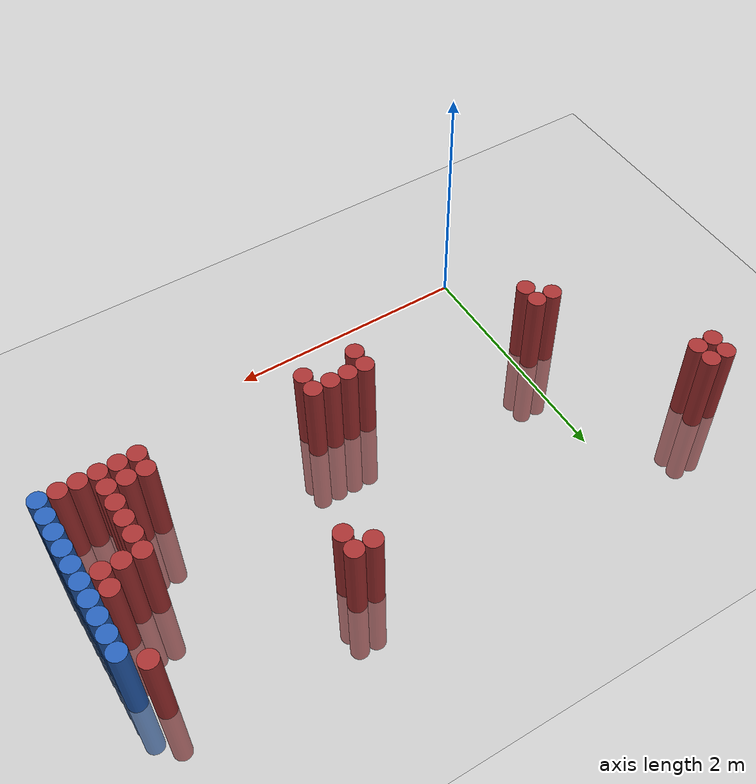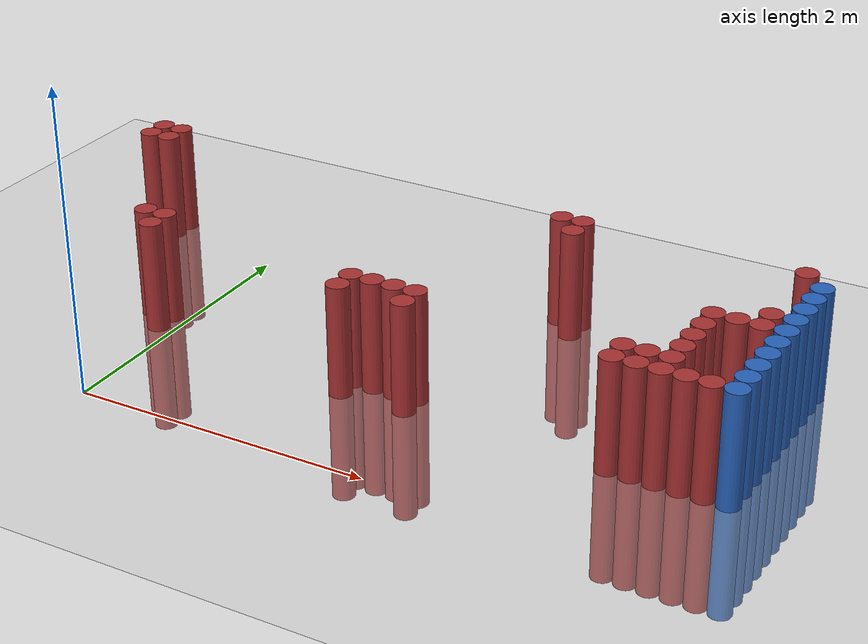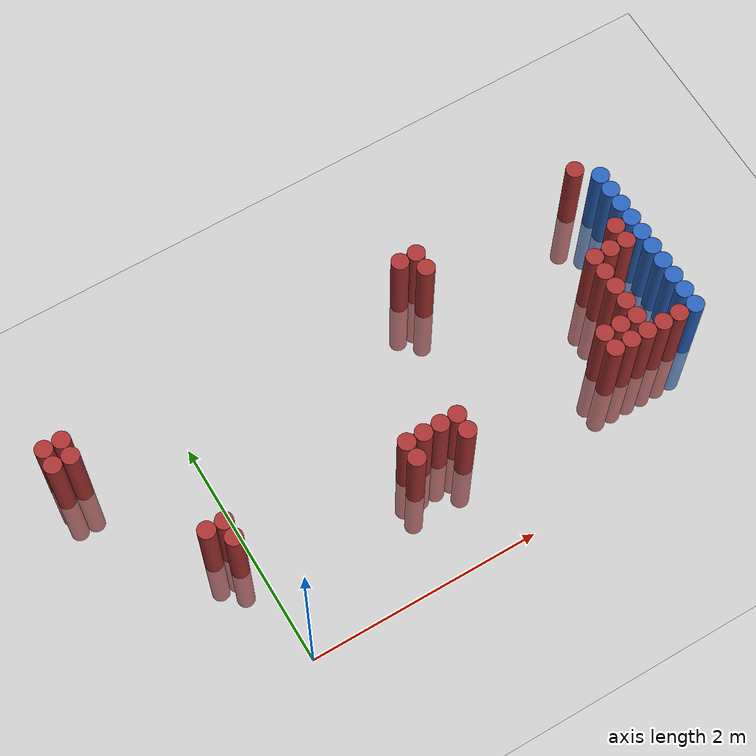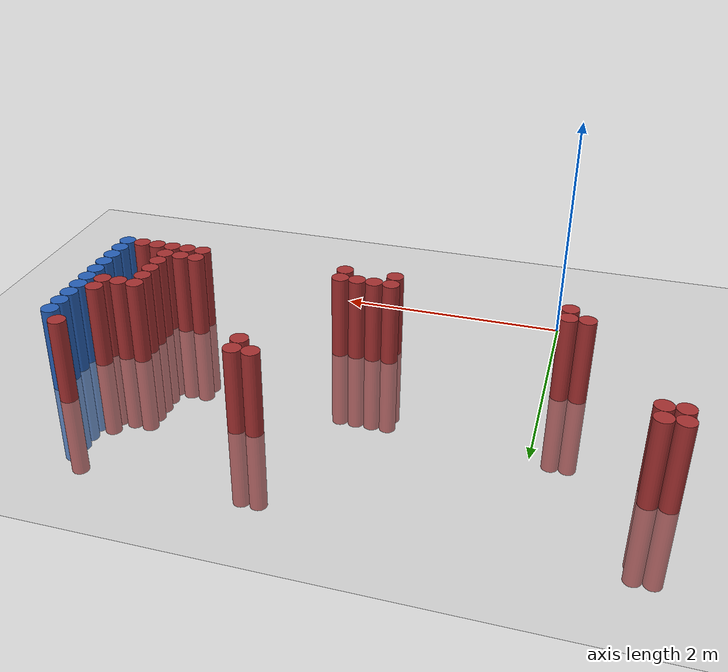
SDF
<sdf version="1.6">
 <world name="default">
  <model name="ground_plane">
   <static>1</static>
   <link name="link">
    <collision name="collision">
     <geometry><plane><normal>0 0 1</normal><size>100 100</size></plane></geometry>
     <surface><friction><ode><mu>100</mu><mu2>50</mu2></ode></friction></surface>
    </collision>
    <visual name="visual">
     <cast_shadows>0</cast_shadows>
     <geometry><plane><normal>0 0 1</normal><size>100 100</size></plane></geometry>
     <material>
      <script><uri>file://media/materials/scripts/gazebo.material</uri><name>Gazebo/Grey</name></script>
     </material>
    </visual>
   </link>
  </model>
  <model name="unit_cylinder_126">
   <static>1</static>
   <pose>3.925000 0.925000 0.000000 0.000000 0.000000 0.000000</pose>
   <link name="link">
    <inertial>
     <mass>1</mass>
     <inertia><ixx>0.145833</ixx><ixy>0</ixy><ixz>0</ixz><iyy>0.145833</iyy><iyz>0</iyz><izz>0.125</izz></inertia>
    </inertial>
    <collision name="collision">
     <geometry><cylinder><radius>0.075000</radius><length>1.5</length></cylinder></geometry>
    </collision>
    <visual name="visual">
     <geometry><cylinder><radius>0.075000</radius><length>1.5</length></cylinder></geometry>
     <material>
      <ambient>0.152000 0.379000 0.720000 1</ambient>
      <diffuse>0.152000 0.379000 0.720000 1</diffuse>
     </material>
     <material>
      <script><name>Gazebo/Grey</name><uri>file://media/materials/scripts/gazebo.material</uri></script>
     </material>
    </visual>
   </link>
  </model>
  <model name="unit_cylinder_128">
   <static>1</static>
   <pose>3.925000 1.075000 0.000000 0.000000 0.000000 0.000000</pose>
   <link name="link">
    <inertial>
     <mass>1</mass>
     <inertia><ixx>0.145833</ixx><ixy>0</ixy><ixz>0</ixz><iyy>0.145833</iyy><iyz>0</iyz><izz>0.125</izz></inertia>
    </inertial>
    <collision name="collision">
     <geometry><cylinder><radius>0.075000</radius><length>1.5</length></cylinder></geometry>
    </collision>
    <visual name="visual">
     <geometry><cylinder><radius>0.075000</radius><length>1.5</length></cylinder></geometry>
     <material>
      <ambient>0.152000 0.379000 0.720000 1</ambient>
      <diffuse>0.152000 0.379000 0.720000 1</diffuse>
     </material>
     <material>
      <script><name>Gazebo/Grey</name><uri>file://media/materials/scripts/gazebo.material</uri></script>
     </material>
    </visual>
   </link>
  </model>
  <model name="unit_cylinder_130">
   <static>1</static>
   <pose>3.925000 1.225000 0.000000 0.000000 0.000000 0.000000</pose>
   <link name="link">
    <inertial>
     <mass>1</mass>
     <inertia><ixx>0.145833</ixx><ixy>0</ixy><ixz>0</ixz><iyy>0.145833</iyy><iyz>0</iyz><izz>0.125</izz></inertia>
    </inertial>
    <collision name="collision">
     <geometry><cylinder><radius>0.075000</radius><length>1.5</length></cylinder></geometry>
    </collision>
    <visual name="visual">
     <geometry><cylinder><radius>0.075000</radius><length>1.5</length></cylinder></geometry>
     <material>
      <ambient>0.152000 0.379000 0.720000 1</ambient>
      <diffuse>0.152000 0.379000 0.720000 1</diffuse>
     </material>
     <material>
      <script><name>Gazebo/Grey</name><uri>file://media/materials/scripts/gazebo.material</uri></script>
     </material>
    </visual>
   </link>
  </model>
  <model name="unit_cylinder_132">
   <static>1</static>
   <pose>3.925000 1.375000 0.000000 0.000000 0.000000 0.000000</pose>
   <link name="link">
    <inertial>
     <mass>1</mass>
     <inertia><ixx>0.145833</ixx><ixy>0</ixy><ixz>0</ixz><iyy>0.145833</iyy><iyz>0</iyz><izz>0.125</izz></inertia>
    </inertial>
    <collision name="collision">
     <geometry><cylinder><radius>0.075000</radius><length>1.5</length></cylinder></geometry>
    </collision>
    <visual name="visual">
     <geometry><cylinder><radius>0.075000</radius><length>1.5</length></cylinder></geometry>
     <material>
      <ambient>0.152000 0.379000 0.720000 1</ambient>
      <diffuse>0.152000 0.379000 0.720000 1</diffuse>
     </material>
     <material>
      <script><name>Gazebo/Grey</name><uri>file://media/materials/scripts/gazebo.material</uri></script>
     </material>
    </visual>
   </link>
  </model>
  <model name="unit_cylinder_134">
   <static>1</static>
   <pose>3.925000 1.525000 0.000000 0.000000 0.000000 0.000000</pose>
   <link name="link">
    <inertial>
     <mass>1</mass>
     <inertia><ixx>0.145833</ixx><ixy>0</ixy><ixz>0</ixz><iyy>0.145833</iyy><iyz>0</iyz><izz>0.125</izz></inertia>
    </inertial>
    <collision name="collision">
     <geometry><cylinder><radius>0.075000</radius><length>1.5</length></cylinder></geometry>
    </collision>
    <visual name="visual">
     <geometry><cylinder><radius>0.075000</radius><length>1.5</length></cylinder></geometry>
     <material>
      <ambient>0.152000 0.379000 0.720000 1</ambient>
      <diffuse>0.152000 0.379000 0.720000 1</diffuse>
     </material>
     <material>
      <script><name>Gazebo/Grey</name><uri>file://media/materials/scripts/gazebo.material</uri></script>
     </material>
    </visual>
   </link>
  </model>
  <model name="unit_cylinder_136">
   <static>1</static>
   <pose>3.925000 1.675000 0.000000 0.000000 0.000000 0.000000</pose>
   <link name="link">
    <inertial>
     <mass>1</mass>
     <inertia><ixx>0.145833</ixx><ixy>0</ixy><ixz>0</ixz><iyy>0.145833</iyy><iyz>0</iyz><izz>0.125</izz></inertia>
    </inertial>
    <collision name="collision">
     <geometry><cylinder><radius>0.075000</radius><length>1.5</length></cylinder></geometry>
    </collision>
    <visual name="visual">
     <geometry><cylinder><radius>0.075000</radius><length>1.5</length></cylinder></geometry>
     <material>
      <ambient>0.152000 0.379000 0.720000 1</ambient>
      <diffuse>0.152000 0.379000 0.720000 1</diffuse>
     </material>
     <material>
      <script><name>Gazebo/Grey</name><uri>file://media/materials/scripts/gazebo.material</uri></script>
     </material>
    </visual>
   </link>
  </model>
  <model name="unit_cylinder_138">
   <static>1</static>
   <pose>3.925000 1.825000 0.000000 0.000000 0.000000 0.000000</pose>
   <link name="link">
    <inertial>
     <mass>1</mass>
     <inertia><ixx>0.145833</ixx><ixy>0</ixy><ixz>0</ixz><iyy>0.145833</iyy><iyz>0</iyz><izz>0.125</izz></inertia>
    </inertial>
    <collision name="collision">
     <geometry><cylinder><radius>0.075000</radius><length>1.5</length></cylinder></geometry>
    </collision>
    <visual name="visual">
     <geometry><cylinder><radius>0.075000</radius><length>1.5</length></cylinder></geometry>
     <material>
      <ambient>0.152000 0.379000 0.720000 1</ambient>
      <diffuse>0.152000 0.379000 0.720000 1</diffuse>
     </material>
     <material>
      <script><name>Gazebo/Grey</name><uri>file://media/materials/scripts/gazebo.material</uri></script>
     </material>
    </visual>
   </link>
  </model>
  <model name="unit_cylinder_140">
   <static>1</static>
   <pose>3.925000 1.975000 0.000000 0.000000 0.000000 0.000000</pose>
   <link name="link">
    <inertial>
     <mass>1</mass>
     <inertia><ixx>0.145833</ixx><ixy>0</ixy><ixz>0</ixz><iyy>0.145833</iyy><iyz>0</iyz><izz>0.125</izz></inertia>
    </inertial>
    <collision name="collision">
     <geometry><cylinder><radius>0.075000</radius><length>1.5</length></cylinder></geometry>
    </collision>
    <visual name="visual">
     <geometry><cylinder><radius>0.075000</radius><length>1.5</length></cylinder></geometry>
     <material>
      <ambient>0.152000 0.379000 0.720000 1</ambient>
      <diffuse>0.152000 0.379000 0.720000 1</diffuse>
     </material>
     <material>
      <script><name>Gazebo/Grey</name><uri>file://media/materials/scripts/gazebo.material</uri></script>
     </material>
    </visual>
   </link>
  </model>
  <model name="unit_cylinder_142">
   <static>1</static>
   <pose>3.925000 2.125000 0.000000 0.000000 0.000000 0.000000</pose>
   <link name="link">
    <inertial>
     <mass>1</mass>
     <inertia><ixx>0.145833</ixx><ixy>0</ixy><ixz>0</ixz><iyy>0.145833</iyy><iyz>0</iyz><izz>0.125</izz></inertia>
    </inertial>
    <collision name="collision">
     <geometry><cylinder><radius>0.075000</radius><length>1.5</length></cylinder></geometry>
    </collision>
    <visual name="visual">
     <geometry><cylinder><radius>0.075000</radius><length>1.5</length></cylinder></geometry>
     <material>
      <ambient>0.152000 0.379000 0.720000 1</ambient>
      <diffuse>0.152000 0.379000 0.720000 1</diffuse>
     </material>
     <material>
      <script><name>Gazebo/Grey</name><uri>file://media/materials/scripts/gazebo.material</uri></script>
     </material>
    </visual>
   </link>
  </model>
  <model name="unit_cylinder_360">
   <static>1</static>
   <pose>-1.025000 2.125000 0.000000 0.000000 0.000000 0.000000</pose>
   <link name="link">
    <inertial>
     <mass>1</mass>
     <inertia><ixx>0.145833</ixx><ixy>0</ixy><ixz>0</ixz><iyy>0.145833</iyy><iyz>0</iyz><izz>0.125</izz></inertia>
    </inertial>
    <collision name="collision">
     <geometry><cylinder><radius>0.075000</radius><length>1.5</length></cylinder></geometry>
    </collision>
    <visual name="visual">
     <geometry><cylinder><radius>0.075000</radius><length>1.5</length></cylinder></geometry>
     <material>
      <ambient>0.648000 0.192000 0.192000 1</ambient>
      <diffuse>0.648000 0.192000 0.192000 1</diffuse>
     </material>
     <material>
      <script><name>Gazebo/Grey</name><uri>file://media/materials/scripts/gazebo.material</uri></script>
     </material>
    </visual>
   </link>
  </model>
  <model name="unit_cylinder_361">
   <static>1</static>
   <pose>-1.025000 2.275000 0.000000 0.000000 0.000000 0.000000</pose>
   <link name="link">
    <inertial>
     <mass>1</mass>
     <inertia><ixx>0.145833</ixx><ixy>0</ixy><ixz>0</ixz><iyy>0.145833</iyy><iyz>0</iyz><izz>0.125</izz></inertia>
    </inertial>
    <collision name="collision">
     <geometry><cylinder><radius>0.075000</radius><length>1.5</length></cylinder></geometry>
    </collision>
    <visual name="visual">
     <geometry><cylinder><radius>0.075000</radius><length>1.5</length></cylinder></geometry>
     <material>
      <ambient>0.648000 0.192000 0.192000 1</ambient>
      <diffuse>0.648000 0.192000 0.192000 1</diffuse>
     </material>
     <material>
      <script><name>Gazebo/Grey</name><uri>file://media/materials/scripts/gazebo.material</uri></script>
     </material>
    </visual>
   </link>
  </model>
  <model name="unit_cylinder_367">
   <static>1</static>
   <pose>-0.875000 2.125000 0.000000 0.000000 0.000000 0.000000</pose>
   <link name="link">
    <inertial>
     <mass>1</mass>
     <inertia><ixx>0.145833</ixx><ixy>0</ixy><ixz>0</ixz><iyy>0.145833</iyy><iyz>0</iyz><izz>0.125</izz></inertia>
    </inertial>
    <collision name="collision">
     <geometry><cylinder><radius>0.075000</radius><length>1.5</length></cylinder></geometry>
    </collision>
    <visual name="visual">
     <geometry><cylinder><radius>0.075000</radius><length>1.5</length></cylinder></geometry>
     <material>
      <ambient>0.648000 0.192000 0.192000 1</ambient>
      <diffuse>0.648000 0.192000 0.192000 1</diffuse>
     </material>
     <material>
      <script><name>Gazebo/Grey</name><uri>file://media/materials/scripts/gazebo.material</uri></script>
     </material>
    </visual>
   </link>
  </model>
  <model name="unit_cylinder_368">
   <static>1</static>
   <pose>-0.875000 2.275000 0.000000 0.000000 0.000000 0.000000</pose>
   <link name="link">
    <inertial>
     <mass>1</mass>
     <inertia><ixx>0.145833</ixx><ixy>0</ixy><ixz>0</ixz><iyy>0.145833</iyy><iyz>0</iyz><izz>0.125</izz></inertia>
    </inertial>
    <collision name="collision">
     <geometry><cylinder><radius>0.075000</radius><length>1.5</length></cylinder></geometry>
    </collision>
    <visual name="visual">
     <geometry><cylinder><radius>0.075000</radius><length>1.5</length></cylinder></geometry>
     <material>
      <ambient>0.648000 0.192000 0.192000 1</ambient>
      <diffuse>0.648000 0.192000 0.192000 1</diffuse>
     </material>
     <material>
      <script><name>Gazebo/Grey</name><uri>file://media/materials/scripts/gazebo.material</uri></script>
     </material>
    </visual>
   </link>
  </model>
  <model name="unit_cylinder_375">
   <static>1</static>
   <pose>-0.275000 1.075000 0.000000 0.000000 0.000000 0.000000</pose>
   <link name="link">
    <inertial>
     <mass>1</mass>
     <inertia><ixx>0.145833</ixx><ixy>0</ixy><ixz>0</ixz><iyy>0.145833</iyy><iyz>0</iyz><izz>0.125</izz></inertia>
    </inertial>
    <collision name="collision">
     <geometry><cylinder><radius>0.075000</radius><length>1.5</length></cylinder></geometry>
    </collision>
    <visual name="visual">
     <geometry><cylinder><radius>0.075000</radius><length>1.5</length></cylinder></geometry>
     <material>
      <ambient>0.648000 0.192000 0.192000 1</ambient>
      <diffuse>0.648000 0.192000 0.192000 1</diffuse>
     </material>
     <material>
      <script><name>Gazebo/Grey</name><uri>file://media/materials/scripts/gazebo.material</uri></script>
     </material>
    </visual>
   </link>
  </model>
  <model name="unit_cylinder_379">
   <static>1</static>
   <pose>-0.125000 0.925000 0.000000 0.000000 0.000000 0.000000</pose>
   <link name="link">
    <inertial>
     <mass>1</mass>
     <inertia><ixx>0.145833</ixx><ixy>0</ixy><ixz>0</ixz><iyy>0.145833</iyy><iyz>0</iyz><izz>0.125</izz></inertia>
    </inertial>
    <collision name="collision">
     <geometry><cylinder><radius>0.075000</radius><length>1.5</length></cylinder></geometry>
    </collision>
    <visual name="visual">
     <geometry><cylinder><radius>0.075000</radius><length>1.5</length></cylinder></geometry>
     <material>
      <ambient>0.648000 0.192000 0.192000 1</ambient>
      <diffuse>0.648000 0.192000 0.192000 1</diffuse>
     </material>
     <material>
      <script><name>Gazebo/Grey</name><uri>file://media/materials/scripts/gazebo.material</uri></script>
     </material>
    </visual>
   </link>
  </model>
  <model name="unit_cylinder_380">
   <static>1</static>
   <pose>-0.125000 1.075000 0.000000 0.000000 0.000000 0.000000</pose>
   <link name="link">
    <inertial>
     <mass>1</mass>
     <inertia><ixx>0.145833</ixx><ixy>0</ixy><ixz>0</ixz><iyy>0.145833</iyy><iyz>0</iyz><izz>0.125</izz></inertia>
    </inertial>
    <collision name="collision">
     <geometry><cylinder><radius>0.075000</radius><length>1.5</length></cylinder></geometry>
    </collision>
    <visual name="visual">
     <geometry><cylinder><radius>0.075000</radius><length>1.5</length></cylinder></geometry>
     <material>
      <ambient>0.648000 0.192000 0.192000 1</ambient>
      <diffuse>0.648000 0.192000 0.192000 1</diffuse>
     </material>
     <material>
      <script><name>Gazebo/Grey</name><uri>file://media/materials/scripts/gazebo.material</uri></script>
     </material>
    </visual>
   </link>
  </model>
  <model name="unit_cylinder_403">
   <static>1</static>
   <pose>1.375000 0.775000 0.000000 0.000000 0.000000 0.000000</pose>
   <link name="link">
    <inertial>
     <mass>1</mass>
     <inertia><ixx>0.145833</ixx><ixy>0</ixy><ixz>0</ixz><iyy>0.145833</iyy><iyz>0</iyz><izz>0.125</izz></inertia>
    </inertial>
    <collision name="collision">
     <geometry><cylinder><radius>0.075000</radius><length>1.5</length></cylinder></geometry>
    </collision>
    <visual name="visual">
     <geometry><cylinder><radius>0.075000</radius><length>1.5</length></cylinder></geometry>
     <material>
      <ambient>0.648000 0.192000 0.192000 1</ambient>
      <diffuse>0.648000 0.192000 0.192000 1</diffuse>
     </material>
     <material>
      <script><name>Gazebo/Grey</name><uri>file://media/materials/scripts/gazebo.material</uri></script>
     </material>
    </visual>
   </link>
  </model>
  <model name="unit_cylinder_404">
   <static>1</static>
   <pose>1.375000 0.925000 0.000000 0.000000 0.000000 0.000000</pose>
   <link name="link">
    <inertial>
     <mass>1</mass>
     <inertia><ixx>0.145833</ixx><ixy>0</ixy><ixz>0</ixz><iyy>0.145833</iyy><iyz>0</iyz><izz>0.125</izz></inertia>
    </inertial>
    <collision name="collision">
     <geometry><cylinder><radius>0.075000</radius><length>1.5</length></cylinder></geometry>
    </collision>
    <visual name="visual">
     <geometry><cylinder><radius>0.075000</radius><length>1.5</length></cylinder></geometry>
     <material>
      <ambient>0.648000 0.192000 0.192000 1</ambient>
      <diffuse>0.648000 0.192000 0.192000 1</diffuse>
     </material>
     <material>
      <script><name>Gazebo/Grey</name><uri>file://media/materials/scripts/gazebo.material</uri></script>
     </material>
    </visual>
   </link>
  </model>
  <model name="unit_cylinder_410">
   <static>1</static>
   <pose>1.525000 0.925000 0.000000 0.000000 0.000000 0.000000</pose>
   <link name="link">
    <inertial>
     <mass>1</mass>
     <inertia><ixx>0.145833</ixx><ixy>0</ixy><ixz>0</ixz><iyy>0.145833</iyy><iyz>0</iyz><izz>0.125</izz></inertia>
    </inertial>
    <collision name="collision">
     <geometry><cylinder><radius>0.075000</radius><length>1.5</length></cylinder></geometry>
    </collision>
    <visual name="visual">
     <geometry><cylinder><radius>0.075000</radius><length>1.5</length></cylinder></geometry>
     <material>
      <ambient>0.648000 0.192000 0.192000 1</ambient>
      <diffuse>0.648000 0.192000 0.192000 1</diffuse>
     </material>
     <material>
      <script><name>Gazebo/Grey</name><uri>file://media/materials/scripts/gazebo.material</uri></script>
     </material>
    </visual>
   </link>
  </model>
  <model name="unit_cylinder_415">
   <static>1</static>
   <pose>1.675000 0.925000 0.000000 0.000000 0.000000 0.000000</pose>
   <link name="link">
    <inertial>
     <mass>1</mass>
     <inertia><ixx>0.145833</ixx><ixy>0</ixy><ixz>0</ixz><iyy>0.145833</iyy><iyz>0</iyz><izz>0.125</izz></inertia>
    </inertial>
    <collision name="collision">
     <geometry><cylinder><radius>0.075000</radius><length>1.5</length></cylinder></geometry>
    </collision>
    <visual name="visual">
     <geometry><cylinder><radius>0.075000</radius><length>1.5</length></cylinder></geometry>
     <material>
      <ambient>0.648000 0.192000 0.192000 1</ambient>
      <diffuse>0.648000 0.192000 0.192000 1</diffuse>
     </material>
     <material>
      <script><name>Gazebo/Grey</name><uri>file://media/materials/scripts/gazebo.material</uri></script>
     </material>
    </visual>
   </link>
  </model>
  <model name="unit_cylinder_423">
   <static>1</static>
   <pose>1.825000 0.775000 0.000000 0.000000 0.000000 0.000000</pose>
   <link name="link">
    <inertial>
     <mass>1</mass>
     <inertia><ixx>0.145833</ixx><ixy>0</ixy><ixz>0</ixz><iyy>0.145833</iyy><iyz>0</iyz><izz>0.125</izz></inertia>
    </inertial>
    <collision name="collision">
     <geometry><cylinder><radius>0.075000</radius><length>1.5</length></cylinder></geometry>
    </collision>
    <visual name="visual">
     <geometry><cylinder><radius>0.075000</radius><length>1.5</length></cylinder></geometry>
     <material>
      <ambient>0.648000 0.192000 0.192000 1</ambient>
      <diffuse>0.648000 0.192000 0.192000 1</diffuse>
     </material>
     <material>
      <script><name>Gazebo/Grey</name><uri>file://media/materials/scripts/gazebo.material</uri></script>
     </material>
    </visual>
   </link>
  </model>
  <model name="unit_cylinder_424">
   <static>1</static>
   <pose>1.825000 0.925000 0.000000 0.000000 0.000000 0.000000</pose>
   <link name="link">
    <inertial>
     <mass>1</mass>
     <inertia><ixx>0.145833</ixx><ixy>0</ixy><ixz>0</ixz><iyy>0.145833</iyy><iyz>0</iyz><izz>0.125</izz></inertia>
    </inertial>
    <collision name="collision">
     <geometry><cylinder><radius>0.075000</radius><length>1.5</length></cylinder></geometry>
    </collision>
    <visual name="visual">
     <geometry><cylinder><radius>0.075000</radius><length>1.5</length></cylinder></geometry>
     <material>
      <ambient>0.648000 0.192000 0.192000 1</ambient>
      <diffuse>0.648000 0.192000 0.192000 1</diffuse>
     </material>
     <material>
      <script><name>Gazebo/Grey</name><uri>file://media/materials/scripts/gazebo.material</uri></script>
     </material>
    </visual>
   </link>
  </model>
  <model name="unit_cylinder_438">
   <static>1</static>
   <pose>2.125000 2.275000 0.000000 0.000000 0.000000 0.000000</pose>
   <link name="link">
    <inertial>
     <mass>1</mass>
     <inertia><ixx>0.145833</ixx><ixy>0</ixy><ixz>0</ixz><iyy>0.145833</iyy><iyz>0</iyz><izz>0.125</izz></inertia>
    </inertial>
    <collision name="collision">
     <geometry><cylinder><radius>0.075000</radius><length>1.5</length></cylinder></geometry>
    </collision>
    <visual name="visual">
     <geometry><cylinder><radius>0.075000</radius><length>1.5</length></cylinder></geometry>
     <material>
      <ambient>0.648000 0.192000 0.192000 1</ambient>
      <diffuse>0.648000 0.192000 0.192000 1</diffuse>
     </material>
     <material>
      <script><name>Gazebo/Grey</name><uri>file://media/materials/scripts/gazebo.material</uri></script>
     </material>
    </visual>
   </link>
  </model>
  <model name="unit_cylinder_444">
   <static>1</static>
   <pose>2.275000 2.125000 0.000000 0.000000 0.000000 0.000000</pose>
   <link name="link">
    <inertial>
     <mass>1</mass>
     <inertia><ixx>0.145833</ixx><ixy>0</ixy><ixz>0</ixz><iyy>0.145833</iyy><iyz>0</iyz><izz>0.125</izz></inertia>
    </inertial>
    <collision name="collision">
     <geometry><cylinder><radius>0.075000</radius><length>1.5</length></cylinder></geometry>
    </collision>
    <visual name="visual">
     <geometry><cylinder><radius>0.075000</radius><length>1.5</length></cylinder></geometry>
     <material>
      <ambient>0.648000 0.192000 0.192000 1</ambient>
      <diffuse>0.648000 0.192000 0.192000 1</diffuse>
     </material>
     <material>
      <script><name>Gazebo/Grey</name><uri>file://media/materials/scripts/gazebo.material</uri></script>
     </material>
    </visual>
   </link>
  </model>
  <model name="unit_cylinder_445">
   <static>1</static>
   <pose>2.275000 2.275000 0.000000 0.000000 0.000000 0.000000</pose>
   <link name="link">
    <inertial>
     <mass>1</mass>
     <inertia><ixx>0.145833</ixx><ixy>0</ixy><ixz>0</ixz><iyy>0.145833</iyy><iyz>0</iyz><izz>0.125</izz></inertia>
    </inertial>
    <collision name="collision">
     <geometry><cylinder><radius>0.075000</radius><length>1.5</length></cylinder></geometry>
    </collision>
    <visual name="visual">
     <geometry><cylinder><radius>0.075000</radius><length>1.5</length></cylinder></geometry>
     <material>
      <ambient>0.648000 0.192000 0.192000 1</ambient>
      <diffuse>0.648000 0.192000 0.192000 1</diffuse>
     </material>
     <material>
      <script><name>Gazebo/Grey</name><uri>file://media/materials/scripts/gazebo.material</uri></script>
     </material>
    </visual>
   </link>
  </model>
  <model name="unit_cylinder_474">
   <static>1</static>
   <pose>3.175000 0.775000 0.000000 0.000000 0.000000 0.000000</pose>
   <link name="link">
    <inertial>
     <mass>1</mass>
     <inertia><ixx>0.145833</ixx><ixy>0</ixy><ixz>0</ixz><iyy>0.145833</iyy><iyz>0</iyz><izz>0.125</izz></inertia>
    </inertial>
    <collision name="collision">
     <geometry><cylinder><radius>0.075000</radius><length>1.5</length></cylinder></geometry>
    </collision>
    <visual name="visual">
     <geometry><cylinder><radius>0.075000</radius><length>1.5</length></cylinder></geometry>
     <material>
      <ambient>0.648000 0.192000 0.192000 1</ambient>
      <diffuse>0.648000 0.192000 0.192000 1</diffuse>
     </material>
     <material>
      <script><name>Gazebo/Grey</name><uri>file://media/materials/scripts/gazebo.material</uri></script>
     </material>
    </visual>
   </link>
  </model>
  <model name="unit_cylinder_475">
   <static>1</static>
   <pose>3.175000 0.925000 0.000000 0.000000 0.000000 0.000000</pose>
   <link name="link">
    <inertial>
     <mass>1</mass>
     <inertia><ixx>0.145833</ixx><ixy>0</ixy><ixz>0</ixz><iyy>0.145833</iyy><iyz>0</iyz><izz>0.125</izz></inertia>
    </inertial>
    <collision name="collision">
     <geometry><cylinder><radius>0.075000</radius><length>1.5</length></cylinder></geometry>
    </collision>
    <visual name="visual">
     <geometry><cylinder><radius>0.075000</radius><length>1.5</length></cylinder></geometry>
     <material>
      <ambient>0.648000 0.192000 0.192000 1</ambient>
      <diffuse>0.648000 0.192000 0.192000 1</diffuse>
     </material>
     <material>
      <script><name>Gazebo/Grey</name><uri>file://media/materials/scripts/gazebo.material</uri></script>
     </material>
    </visual>
   </link>
  </model>
  <model name="unit_cylinder_478">
   <static>1</static>
   <pose>3.325000 0.775000 0.000000 0.000000 0.000000 0.000000</pose>
   <link name="link">
    <inertial>
     <mass>1</mass>
     <inertia><ixx>0.145833</ixx><ixy>0</ixy><ixz>0</ixz><iyy>0.145833</iyy><iyz>0</iyz><izz>0.125</izz></inertia>
    </inertial>
    <collision name="collision">
     <geometry><cylinder><radius>0.075000</radius><length>1.5</length></cylinder></geometry>
    </collision>
    <visual name="visual">
     <geometry><cylinder><radius>0.075000</radius><length>1.5</length></cylinder></geometry>
     <material>
      <ambient>0.648000 0.192000 0.192000 1</ambient>
      <diffuse>0.648000 0.192000 0.192000 1</diffuse>
     </material>
     <material>
      <script><name>Gazebo/Grey</name><uri>file://media/materials/scripts/gazebo.material</uri></script>
     </material>
    </visual>
   </link>
  </model>
  <model name="unit_cylinder_479">
   <static>1</static>
   <pose>3.325000 0.925000 0.000000 0.000000 0.000000 0.000000</pose>
   <link name="link">
    <inertial>
     <mass>1</mass>
     <inertia><ixx>0.145833</ixx><ixy>0</ixy><ixz>0</ixz><iyy>0.145833</iyy><iyz>0</iyz><izz>0.125</izz></inertia>
    </inertial>
    <collision name="collision">
     <geometry><cylinder><radius>0.075000</radius><length>1.5</length></cylinder></geometry>
    </collision>
    <visual name="visual">
     <geometry><cylinder><radius>0.075000</radius><length>1.5</length></cylinder></geometry>
     <material>
      <ambient>0.648000 0.192000 0.192000 1</ambient>
      <diffuse>0.648000 0.192000 0.192000 1</diffuse>
     </material>
     <material>
      <script><name>Gazebo/Grey</name><uri>file://media/materials/scripts/gazebo.material</uri></script>
     </material>
    </visual>
   </link>
  </model>
  <model name="unit_cylinder_483">
   <static>1</static>
   <pose>3.475000 0.775000 0.000000 0.000000 0.000000 0.000000</pose>
   <link name="link">
    <inertial>
     <mass>1</mass>
     <inertia><ixx>0.145833</ixx><ixy>0</ixy><ixz>0</ixz><iyy>0.145833</iyy><iyz>0</iyz><izz>0.125</izz></inertia>
    </inertial>
    <collision name="collision">
     <geometry><cylinder><radius>0.075000</radius><length>1.5</length></cylinder></geometry>
    </collision>
    <visual name="visual">
     <geometry><cylinder><radius>0.075000</radius><length>1.5</length></cylinder></geometry>
     <material>
      <ambient>0.648000 0.192000 0.192000 1</ambient>
      <diffuse>0.648000 0.192000 0.192000 1</diffuse>
     </material>
     <material>
      <script><name>Gazebo/Grey</name><uri>file://media/materials/scripts/gazebo.material</uri></script>
     </material>
    </visual>
   </link>
  </model>
  <model name="unit_cylinder_484">
   <static>1</static>
   <pose>3.475000 0.925000 0.000000 0.000000 0.000000 0.000000</pose>
   <link name="link">
    <inertial>
     <mass>1</mass>
     <inertia><ixx>0.145833</ixx><ixy>0</ixy><ixz>0</ixz><iyy>0.145833</iyy><iyz>0</iyz><izz>0.125</izz></inertia>
    </inertial>
    <collision name="collision">
     <geometry><cylinder><radius>0.075000</radius><length>1.5</length></cylinder></geometry>
    </collision>
    <visual name="visual">
     <geometry><cylinder><radius>0.075000</radius><length>1.5</length></cylinder></geometry>
     <material>
      <ambient>0.648000 0.192000 0.192000 1</ambient>
      <diffuse>0.648000 0.192000 0.192000 1</diffuse>
     </material>
     <material>
      <script><name>Gazebo/Grey</name><uri>file://media/materials/scripts/gazebo.material</uri></script>
     </material>
    </visual>
   </link>
  </model>
  <model name="unit_cylinder_485">
   <static>1</static>
   <pose>3.475000 1.075000 0.000000 0.000000 0.000000 0.000000</pose>
   <link name="link">
    <inertial>
     <mass>1</mass>
     <inertia><ixx>0.145833</ixx><ixy>0</ixy><ixz>0</ixz><iyy>0.145833</iyy><iyz>0</iyz><izz>0.125</izz></inertia>
    </inertial>
    <collision name="collision">
     <geometry><cylinder><radius>0.075000</radius><length>1.5</length></cylinder></geometry>
    </collision>
    <visual name="visual">
     <geometry><cylinder><radius>0.075000</radius><length>1.5</length></cylinder></geometry>
     <material>
      <ambient>0.648000 0.192000 0.192000 1</ambient>
      <diffuse>0.648000 0.192000 0.192000 1</diffuse>
     </material>
     <material>
      <script><name>Gazebo/Grey</name><uri>file://media/materials/scripts/gazebo.material</uri></script>
     </material>
    </visual>
   </link>
  </model>
  <model name="unit_cylinder_486">
   <static>1</static>
   <pose>3.475000 1.225000 0.000000 0.000000 0.000000 0.000000</pose>
   <link name="link">
    <inertial>
     <mass>1</mass>
     <inertia><ixx>0.145833</ixx><ixy>0</ixy><ixz>0</ixz><iyy>0.145833</iyy><iyz>0</iyz><izz>0.125</izz></inertia>
    </inertial>
    <collision name="collision">
     <geometry><cylinder><radius>0.075000</radius><length>1.5</length></cylinder></geometry>
    </collision>
    <visual name="visual">
     <geometry><cylinder><radius>0.075000</radius><length>1.5</length></cylinder></geometry>
     <material>
      <ambient>0.648000 0.192000 0.192000 1</ambient>
      <diffuse>0.648000 0.192000 0.192000 1</diffuse>
     </material>
     <material>
      <script><name>Gazebo/Grey</name><uri>file://media/materials/scripts/gazebo.material</uri></script>
     </material>
    </visual>
   </link>
  </model>
  <model name="unit_cylinder_487">
   <static>1</static>
   <pose>3.475000 1.375000 0.000000 0.000000 0.000000 0.000000</pose>
   <link name="link">
    <inertial>
     <mass>1</mass>
     <inertia><ixx>0.145833</ixx><ixy>0</ixy><ixz>0</ixz><iyy>0.145833</iyy><iyz>0</iyz><izz>0.125</izz></inertia>
    </inertial>
    <collision name="collision">
     <geometry><cylinder><radius>0.075000</radius><length>1.5</length></cylinder></geometry>
    </collision>
    <visual name="visual">
     <geometry><cylinder><radius>0.075000</radius><length>1.5</length></cylinder></geometry>
     <material>
      <ambient>0.648000 0.192000 0.192000 1</ambient>
      <diffuse>0.648000 0.192000 0.192000 1</diffuse>
     </material>
     <material>
      <script><name>Gazebo/Grey</name><uri>file://media/materials/scripts/gazebo.material</uri></script>
     </material>
    </visual>
   </link>
  </model>
  <model name="unit_cylinder_488">
   <static>1</static>
   <pose>3.475000 1.525000 0.000000 0.000000 0.000000 0.000000</pose>
   <link name="link">
    <inertial>
     <mass>1</mass>
     <inertia><ixx>0.145833</ixx><ixy>0</ixy><ixz>0</ixz><iyy>0.145833</iyy><iyz>0</iyz><izz>0.125</izz></inertia>
    </inertial>
    <collision name="collision">
     <geometry><cylinder><radius>0.075000</radius><length>1.5</length></cylinder></geometry>
    </collision>
    <visual name="visual">
     <geometry><cylinder><radius>0.075000</radius><length>1.5</length></cylinder></geometry>
     <material>
      <ambient>0.648000 0.192000 0.192000 1</ambient>
      <diffuse>0.648000 0.192000 0.192000 1</diffuse>
     </material>
     <material>
      <script><name>Gazebo/Grey</name><uri>file://media/materials/scripts/gazebo.material</uri></script>
     </material>
    </visual>
   </link>
  </model>
  <model name="unit_cylinder_494">
   <static>1</static>
   <pose>3.625000 0.775000 0.000000 0.000000 0.000000 0.000000</pose>
   <link name="link">
    <inertial>
     <mass>1</mass>
     <inertia><ixx>0.145833</ixx><ixy>0</ixy><ixz>0</ixz><iyy>0.145833</iyy><iyz>0</iyz><izz>0.125</izz></inertia>
    </inertial>
    <collision name="collision">
     <geometry><cylinder><radius>0.075000</radius><length>1.5</length></cylinder></geometry>
    </collision>
    <visual name="visual">
     <geometry><cylinder><radius>0.075000</radius><length>1.5</length></cylinder></geometry>
     <material>
      <ambient>0.648000 0.192000 0.192000 1</ambient>
      <diffuse>0.648000 0.192000 0.192000 1</diffuse>
     </material>
     <material>
      <script><name>Gazebo/Grey</name><uri>file://media/materials/scripts/gazebo.material</uri></script>
     </material>
    </visual>
   </link>
  </model>
  <model name="unit_cylinder_495">
   <static>1</static>
   <pose>3.625000 1.525000 0.000000 0.000000 0.000000 0.000000</pose>
   <link name="link">
    <inertial>
     <mass>1</mass>
     <inertia><ixx>0.145833</ixx><ixy>0</ixy><ixz>0</ixz><iyy>0.145833</iyy><iyz>0</iyz><izz>0.125</izz></inertia>
    </inertial>
    <collision name="collision">
     <geometry><cylinder><radius>0.075000</radius><length>1.5</length></cylinder></geometry>
    </collision>
    <visual name="visual">
     <geometry><cylinder><radius>0.075000</radius><length>1.5</length></cylinder></geometry>
     <material>
      <ambient>0.648000 0.192000 0.192000 1</ambient>
      <diffuse>0.648000 0.192000 0.192000 1</diffuse>
     </material>
     <material>
      <script><name>Gazebo/Grey</name><uri>file://media/materials/scripts/gazebo.material</uri></script>
     </material>
    </visual>
   </link>
  </model>
  <model name="unit_cylinder_506">
   <static>1</static>
   <pose>3.775000 0.775000 0.000000 0.000000 0.000000 0.000000</pose>
   <link name="link">
    <inertial>
     <mass>1</mass>
     <inertia><ixx>0.145833</ixx><ixy>0</ixy><ixz>0</ixz><iyy>0.145833</iyy><iyz>0</iyz><izz>0.125</izz></inertia>
    </inertial>
    <collision name="collision">
     <geometry><cylinder><radius>0.075000</radius><length>1.5</length></cylinder></geometry>
    </collision>
    <visual name="visual">
     <geometry><cylinder><radius>0.075000</radius><length>1.5</length></cylinder></geometry>
     <material>
      <ambient>0.648000 0.192000 0.192000 1</ambient>
      <diffuse>0.648000 0.192000 0.192000 1</diffuse>
     </material>
     <material>
      <script><name>Gazebo/Grey</name><uri>file://media/materials/scripts/gazebo.material</uri></script>
     </material>
    </visual>
   </link>
  </model>
  <model name="unit_cylinder_507">
   <static>1</static>
   <pose>3.775000 1.525000 0.000000 0.000000 0.000000 0.000000</pose>
   <link name="link">
    <inertial>
     <mass>1</mass>
     <inertia><ixx>0.145833</ixx><ixy>0</ixy><ixz>0</ixz><iyy>0.145833</iyy><iyz>0</iyz><izz>0.125</izz></inertia>
    </inertial>
    <collision name="collision">
     <geometry><cylinder><radius>0.075000</radius><length>1.5</length></cylinder></geometry>
    </collision>
    <visual name="visual">
     <geometry><cylinder><radius>0.075000</radius><length>1.5</length></cylinder></geometry>
     <material>
      <ambient>0.648000 0.192000 0.192000 1</ambient>
      <diffuse>0.648000 0.192000 0.192000 1</diffuse>
     </material>
     <material>
      <script><name>Gazebo/Grey</name><uri>file://media/materials/scripts/gazebo.material</uri></script>
     </material>
    </visual>
   </link>
  </model>
  <model name="unit_cylinder_508">
   <static>1</static>
   <pose>3.775000 1.675000 0.000000 0.000000 0.000000 0.000000</pose>
   <link name="link">
    <inertial>
     <mass>1</mass>
     <inertia><ixx>0.145833</ixx><ixy>0</ixy><ixz>0</ixz><iyy>0.145833</iyy><iyz>0</iyz><izz>0.125</izz></inertia>
    </inertial>
    <collision name="collision">
     <geometry><cylinder><radius>0.075000</radius><length>1.5</length></cylinder></geometry>
    </collision>
    <visual name="visual">
     <geometry><cylinder><radius>0.075000</radius><length>1.5</length></cylinder></geometry>
     <material>
      <ambient>0.648000 0.192000 0.192000 1</ambient>
      <diffuse>0.648000 0.192000 0.192000 1</diffuse>
     </material>
     <material>
      <script><name>Gazebo/Grey</name><uri>file://media/materials/scripts/gazebo.material</uri></script>
     </material>
    </visual>
   </link>
  </model>
  <model name="unit_cylinder_509">
   <static>1</static>
   <pose>3.775000 2.275000 0.000000 0.000000 0.000000 0.000000</pose>
   <link name="link">
    <inertial>
     <mass>1</mass>
     <inertia><ixx>0.145833</ixx><ixy>0</ixy><ixz>0</ixz><iyy>0.145833</iyy><iyz>0</iyz><izz>0.125</izz></inertia>
    </inertial>
    <collision name="collision">
     <geometry><cylinder><radius>0.075000</radius><length>1.5</length></cylinder></geometry>
    </collision>
    <visual name="visual">
     <geometry><cylinder><radius>0.075000</radius><length>1.5</length></cylinder></geometry>
     <material>
      <ambient>0.648000 0.192000 0.192000 1</ambient>
      <diffuse>0.648000 0.192000 0.192000 1</diffuse>
     </material>
     <material>
      <script><name>Gazebo/Grey</name><uri>file://media/materials/scripts/gazebo.material</uri></script>
     </material>
    </visual>
   </link>
  </model>
  <model name="unit_cylinder_529">
   <static>1</static>
   <pose>3.925000 0.775000 0.000000 0.000000 0.000000 0.000000</pose>
   <link name="link">
    <inertial>
     <mass>1</mass>
     <inertia><ixx>0.145833</ixx><ixy>0</ixy><ixz>0</ixz><iyy>0.145833</iyy><iyz>0</iyz><izz>0.125</izz></inertia>
    </inertial>
    <collision name="collision">
     <geometry><cylinder><radius>0.075000</radius><length>1.5</length></cylinder></geometry>
    </collision>
    <visual name="visual">
     <geometry><cylinder><radius>0.075000</radius><length>1.5</length></cylinder></geometry>
     <material>
      <ambient>0.152000 0.379000 0.720000 1</ambient>
      <diffuse>0.152000 0.379000 0.720000 1</diffuse>
     </material>
     <material>
      <script><name>Gazebo/Grey</name><uri>file://media/materials/scripts/gazebo.material</uri></script>
     </material>
    </visual>
   </link>
  </model>
  <model name="unit_cylinder_530">
   <static>1</static>
   <pose>3.925000 0.925000 0.000000 0.000000 0.000000 0.000000</pose>
   <link name="link">
    <inertial>
     <mass>1</mass>
     <inertia><ixx>0.145833</ixx><ixy>0</ixy><ixz>0</ixz><iyy>0.145833</iyy><iyz>0</iyz><izz>0.125</izz></inertia>
    </inertial>
    <collision name="collision">
     <geometry><cylinder><radius>0.075000</radius><length>1.5</length></cylinder></geometry>
    </collision>
    <visual name="visual">
     <geometry><cylinder><radius>0.075000</radius><length>1.5</length></cylinder></geometry>
     <material>
      <ambient>0.152000 0.379000 0.720000 1</ambient>
      <diffuse>0.152000 0.379000 0.720000 1</diffuse>
     </material>
     <material>
      <script><name>Gazebo/Grey</name><uri>file://media/materials/scripts/gazebo.material</uri></script>
     </material>
    </visual>
   </link>
  </model>
  <model name="unit_cylinder_531">
   <static>1</static>
   <pose>3.925000 1.075000 0.000000 0.000000 0.000000 0.000000</pose>
   <link name="link">
    <inertial>
     <mass>1</mass>
     <inertia><ixx>0.145833</ixx><ixy>0</ixy><ixz>0</ixz><iyy>0.145833</iyy><iyz>0</iyz><izz>0.125</izz></inertia>
    </inertial>
    <collision name="collision">
     <geometry><cylinder><radius>0.075000</radius><length>1.5</length></cylinder></geometry>
    </collision>
    <visual name="visual">
     <geometry><cylinder><radius>0.075000</radius><length>1.5</length></cylinder></geometry>
     <material>
      <ambient>0.152000 0.379000 0.720000 1</ambient>
      <diffuse>0.152000 0.379000 0.720000 1</diffuse>
     </material>
     <material>
      <script><name>Gazebo/Grey</name><uri>file://media/materials/scripts/gazebo.material</uri></script>
     </material>
    </visual>
   </link>
  </model>
  <model name="unit_cylinder_532">
   <static>1</static>
   <pose>3.925000 1.225000 0.000000 0.000000 0.000000 0.000000</pose>
   <link name="link">
    <inertial>
     <mass>1</mass>
     <inertia><ixx>0.145833</ixx><ixy>0</ixy><ixz>0</ixz><iyy>0.145833</iyy><iyz>0</iyz><izz>0.125</izz></inertia>
    </inertial>
    <collision name="collision">
     <geometry><cylinder><radius>0.075000</radius><length>1.5</length></cylinder></geometry>
    </collision>
    <visual name="visual">
     <geometry><cylinder><radius>0.075000</radius><length>1.5</length></cylinder></geometry>
     <material>
      <ambient>0.152000 0.379000 0.720000 1</ambient>
      <diffuse>0.152000 0.379000 0.720000 1</diffuse>
     </material>
     <material>
      <script><name>Gazebo/Grey</name><uri>file://media/materials/scripts/gazebo.material</uri></script>
     </material>
    </visual>
   </link>
  </model>
  <model name="unit_cylinder_533">
   <static>1</static>
   <pose>3.925000 1.375000 0.000000 0.000000 0.000000 0.000000</pose>
   <link name="link">
    <inertial>
     <mass>1</mass>
     <inertia><ixx>0.145833</ixx><ixy>0</ixy><ixz>0</ixz><iyy>0.145833</iyy><iyz>0</iyz><izz>0.125</izz></inertia>
    </inertial>
    <collision name="collision">
     <geometry><cylinder><radius>0.075000</radius><length>1.5</length></cylinder></geometry>
    </collision>
    <visual name="visual">
     <geometry><cylinder><radius>0.075000</radius><length>1.5</length></cylinder></geometry>
     <material>
      <ambient>0.152000 0.379000 0.720000 1</ambient>
      <diffuse>0.152000 0.379000 0.720000 1</diffuse>
     </material>
     <material>
      <script><name>Gazebo/Grey</name><uri>file://media/materials/scripts/gazebo.material</uri></script>
     </material>
    </visual>
   </link>
  </model>
  <model name="unit_cylinder_534">
   <static>1</static>
   <pose>3.925000 1.525000 0.000000 0.000000 0.000000 0.000000</pose>
   <link name="link">
    <inertial>
     <mass>1</mass>
     <inertia><ixx>0.145833</ixx><ixy>0</ixy><ixz>0</ixz><iyy>0.145833</iyy><iyz>0</iyz><izz>0.125</izz></inertia>
    </inertial>
    <collision name="collision">
     <geometry><cylinder><radius>0.075000</radius><length>1.5</length></cylinder></geometry>
    </collision>
    <visual name="visual">
     <geometry><cylinder><radius>0.075000</radius><length>1.5</length></cylinder></geometry>
     <material>
      <ambient>0.152000 0.379000 0.720000 1</ambient>
      <diffuse>0.152000 0.379000 0.720000 1</diffuse>
     </material>
     <material>
      <script><name>Gazebo/Grey</name><uri>file://media/materials/scripts/gazebo.material</uri></script>
     </material>
    </visual>
   </link>
  </model>
  <model name="unit_cylinder_535">
   <static>1</static>
   <pose>3.925000 1.675000 0.000000 0.000000 0.000000 0.000000</pose>
   <link name="link">
    <inertial>
     <mass>1</mass>
     <inertia><ixx>0.145833</ixx><ixy>0</ixy><ixz>0</ixz><iyy>0.145833</iyy><iyz>0</iyz><izz>0.125</izz></inertia>
    </inertial>
    <collision name="collision">
     <geometry><cylinder><radius>0.075000</radius><length>1.5</length></cylinder></geometry>
    </collision>
    <visual name="visual">
     <geometry><cylinder><radius>0.075000</radius><length>1.5</length></cylinder></geometry>
     <material>
      <ambient>0.152000 0.379000 0.720000 1</ambient>
      <diffuse>0.152000 0.379000 0.720000 1</diffuse>
     </material>
     <material>
      <script><name>Gazebo/Grey</name><uri>file://media/materials/scripts/gazebo.material</uri></script>
     </material>
    </visual>
   </link>
  </model>
  <model name="unit_cylinder_536">
   <static>1</static>
   <pose>3.925000 1.825000 0.000000 0.000000 0.000000 0.000000</pose>
   <link name="link">
    <inertial>
     <mass>1</mass>
     <inertia><ixx>0.145833</ixx><ixy>0</ixy><ixz>0</ixz><iyy>0.145833</iyy><iyz>0</iyz><izz>0.125</izz></inertia>
    </inertial>
    <collision name="collision">
     <geometry><cylinder><radius>0.075000</radius><length>1.5</length></cylinder></geometry>
    </collision>
    <visual name="visual">
     <geometry><cylinder><radius>0.075000</radius><length>1.5</length></cylinder></geometry>
     <material>
      <ambient>0.152000 0.379000 0.720000 1</ambient>
      <diffuse>0.152000 0.379000 0.720000 1</diffuse>
     </material>
     <material>
      <script><name>Gazebo/Grey</name><uri>file://media/materials/scripts/gazebo.material</uri></script>
     </material>
    </visual>
   </link>
  </model>
  <model name="unit_cylinder_537">
   <static>1</static>
   <pose>3.925000 1.975000 0.000000 0.000000 0.000000 0.000000</pose>
   <link name="link">
    <inertial>
     <mass>1</mass>
     <inertia><ixx>0.145833</ixx><ixy>0</ixy><ixz>0</ixz><iyy>0.145833</iyy><iyz>0</iyz><izz>0.125</izz></inertia>
    </inertial>
    <collision name="collision">
     <geometry><cylinder><radius>0.075000</radius><length>1.5</length></cylinder></geometry>
    </collision>
    <visual name="visual">
     <geometry><cylinder><radius>0.075000</radius><length>1.5</length></cylinder></geometry>
     <material>
      <ambient>0.152000 0.379000 0.720000 1</ambient>
      <diffuse>0.152000 0.379000 0.720000 1</diffuse>
     </material>
     <material>
      <script><name>Gazebo/Grey</name><uri>file://media/materials/scripts/gazebo.material</uri></script>
     </material>
    </visual>
   </link>
  </model>
  <model name="unit_cylinder_538">
   <static>1</static>
   <pose>3.925000 2.125000 0.000000 0.000000 0.000000 0.000000</pose>
   <link name="link">
    <inertial>
     <mass>1</mass>
     <inertia><ixx>0.145833</ixx><ixy>0</ixy><ixz>0</ixz><iyy>0.145833</iyy><iyz>0</iyz><izz>0.125</izz></inertia>
    </inertial>
    <collision name="collision">
     <geometry><cylinder><radius>0.075000</radius><length>1.5</length></cylinder></geometry>
    </collision>
    <visual name="visual">
     <geometry><cylinder><radius>0.075000</radius><length>1.5</length></cylinder></geometry>
     <material>
      <ambient>0.152000 0.379000 0.720000 1</ambient>
      <diffuse>0.152000 0.379000 0.720000 1</diffuse>
     </material>
     <material>
      <script><name>Gazebo/Grey</name><uri>file://media/materials/scripts/gazebo.material</uri></script>
     </material>
    </visual>
   </link>
  </model>
 </world>
</sdf>
